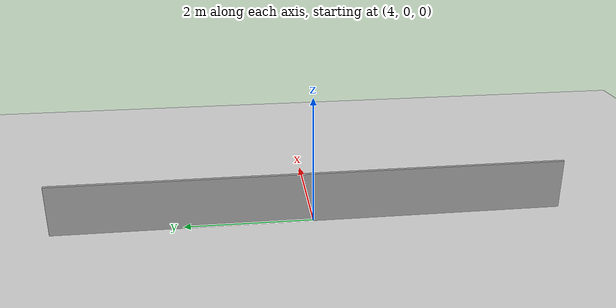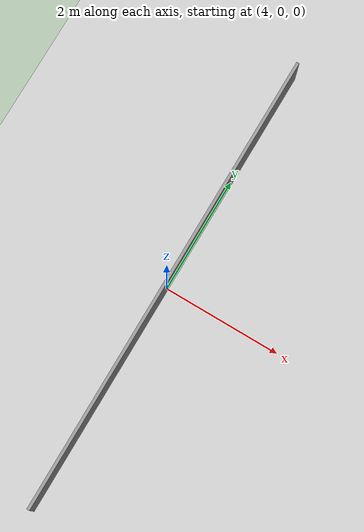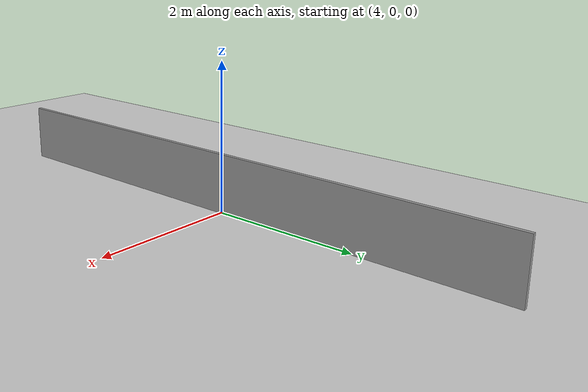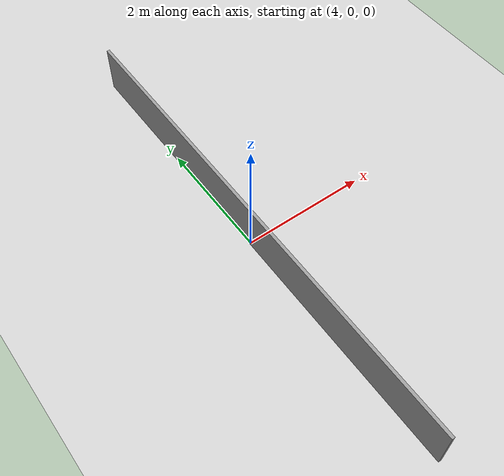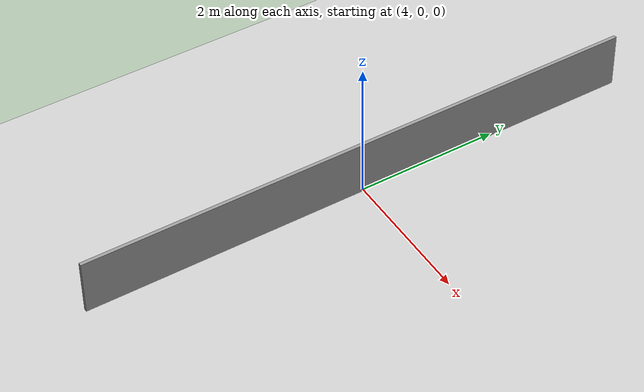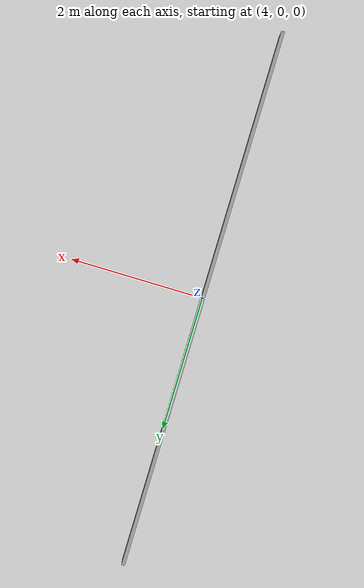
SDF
<?xml version="1.0" ?>
<sdf version="1.4">
  <!-- We use a custom world for the rrbot so that the camera angle is launched correctly -->

  <world name="default">
    <include>
      <uri>model://ground_plane</uri>
    </include>

    <!-- Global light source -->
    <include>
      <uri>model://sun</uri>
    </include>

    <!-- Focus camera on tall pendulum -->
    <gui fullscreen='0'>
      <camera name='user_camera'>
        <pose>4.927360 -4.376610 3.740080 0.000000 0.275643 2.356190</pose>
        <view_controller>orbit</view_controller>
      </camera>
    </gui>

    <model name='wall_0'>
      <link name='base'>
        <pose frame=''>4 0 0.4 0 -0 0</pose>

        <inertial>
          <mass>1</mass>
          <inertia>
            <ixx>0.166667</ixx>
            <ixy>0</ixy>
            <ixz>0</ixz>
            <iyy>0.166667</iyy>
            <iyz>0</iyz>
            <izz>0.166667</izz>
          </inertia>
          <pose frame=''>0 0 0 0 -0 0</pose>
        </inertial>

        <visual name='visual'>
          <pose frame=''>0 0 0 0 -0 0</pose>
          <geometry>
            <box>
              <size>0.05 8 0.8</size>
            </box>
          </geometry>
          <material>
            <script>
              <name>Gazebo/Grey</name>
              <uri>file://media/materials/scripts/gazebo.material</uri>
            </script>
            <ambient>0.3 0.3 0.3 1</ambient>
            <diffuse>0.7 0.7 0.7 1</diffuse>
            <specular>0.01 0.01 0.01 1</specular>
            <emissive>0 0 0 1</emissive>
          </material>

          <cast_shadows>1</cast_shadows>
          <transparency>0</transparency>
        </visual>

        <collision name='collision'>
          <laser_retro>0</laser_retro>
          <max_contacts>10</max_contacts>
          <pose frame=''>0 0 0 0 -0 0</pose>
          <geometry>
            <box>
              <size>0.05 8 0.8</size>
            </box>
          </geometry>
        </collision>

        <self_collide>0</self_collide>
        <kinematic>0</kinematic>
        <gravity>1</gravity>
      </link>
      <static>1</static>
    </model>

  </world>
</sdf>
